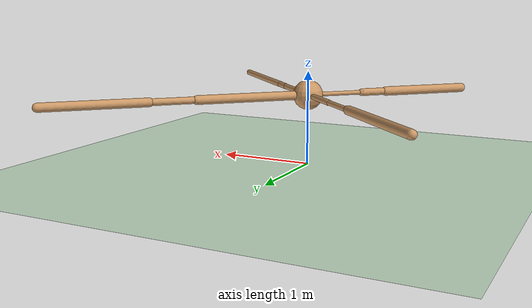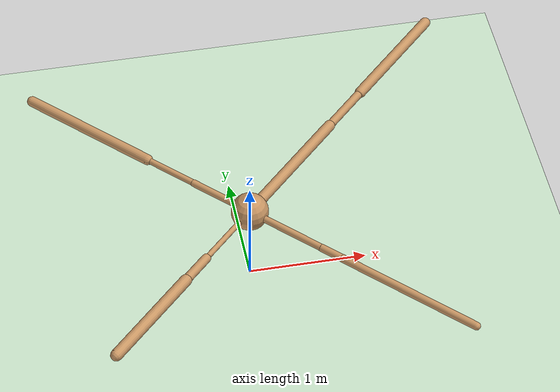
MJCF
<mujoco model="ant">
  <compiler angle="degree" coordinate="local" inertiafromgeom="true" />
  <option integrator="RK4" timestep="0.01" />
  <custom>
    <numeric data="0.0 0.0 0.55 1.0 0.0 0.0 0.0 0.0 1.0 0.0 -1.0 0.0 -1.0 0.0 1.0" name="init_qpos" />
  </custom>
  <default>
    <joint armature="1" damping="1" limited="true" />
    <geom conaffinity="0" condim="3" density="5.0" friction="1 0.5 0.5" margin="0.01" rgba="0.8 0.6 0.4 1" />
  </default>
  <asset>
    <texture builtin="gradient" height="100" rgb1="1 1 1" rgb2="0 0 0" type="skybox" width="100" />
    <texture builtin="flat" height="1278" mark="cross" markrgb="1 1 1" name="texgeom" random="0.01" rgb1="0.8 0.6 0.4" rgb2="0.8 0.6 0.4" type="cube" width="127" />
    <texture builtin="checker" height="100" name="texplane" rgb1="0 0 0" rgb2="0.8 0.8 0.8" type="2d" width="100" />
    <material name="MatPlane" reflectance="0.5" shininess="1" specular="1" texrepeat="60 60" texture="texplane" />
    <material name="geom" texture="texgeom" texuniform="true" />
  </asset>
  <worldbody>
    <light cutoff="100" diffuse="1 1 1" dir="-0 0 -1.3" directional="true" exponent="1" pos="0 0 1.3" specular=".1 .1 .1" />
    <geom conaffinity="1" condim="3" material="MatPlane" name="floor" pos="0 0 0" rgba="0.8 0.9 0.8 1" size="40 40 40" type="plane" />
    <body name="torso" pos="0 0 0.75">
      <camera name="track" mode="trackcom" pos="0 -11 5" xyaxes="1 0 0 0 0.5 1" />
      <geom name="torso_geom" pos="0 0 0" size="0.15727044641971588" type="sphere" />
      <joint armature="0" damping="0" limited="false" margin="0.01" name="root" pos="0 0 0" type="free" />
      <body name="front_left_leg" pos="0 0 0">
        <geom fromto="0 0 0 0.8467984795570374 0.8467984795570374 0" name="aux_1_geom" size="0.047141335904598236" type="capsule" />
        <body name="aux_1" pos="0.8467984795570374 0.8467984795570374 0">
          <joint axis="0 0 1" name="hip_1" pos="0.0 0.0 0.0" range="-30 30" type="hinge" />
          <geom fromto="0 0 0 0.34127774834632874 0.34127774834632874 0" name="left_leg_geom" size="0.036157820373773575" type="capsule" />
          <body name="left_leg_geom_aux" pos="0.34127774834632874 0.34127774834632874 0">
            <joint axis="-1 1 0" name="ankle_1" pos="0.0 0.0 0.0" range="30 70" type="hinge" />
            <geom fromto="0 0 0 0.7525796294212341 0.7525796294212341 0" name="left_ankle_geom" size="0.04646625369787216" type="capsule" />
          </body>
        </body>
      </body>
      <body name="front_right_leg" pos="0 0 0">
        <geom fromto="0 0 0 -0.3974407911300659 0.3974407911300659 0" name="aux_2_geom" size="0.03001130186021328" type="capsule" />
        <body name="aux_2" pos="-0.3974407911300659 0.3974407911300659 0">
          <joint axis="0 0 1" name="hip_2" pos="0.0 0.0 0.0" range="-30 30" type="hinge" />
          <geom fromto="0 0 0 -0.33697956800460815 0.33697956800460815 0" name="right_leg_geom" size="0.02608811855316162" type="capsule" />
          <body name="right_leg_geom_aux" pos="-0.33697956800460815 0.33697956800460815 0">
            <joint axis="1 1 0" name="ankle_2" pos="0.0 0.0 0.0" range="-70 -30" type="hinge" />
            <geom fromto="0 0 0 -0.8615007400512695 0.8615007400512695 0" name="right_ankle_geom" size="0.04501624405384064" type="capsule" />
          </body>
        </body>
      </body>
      <body name="back_leg" pos="0 0 0">
        <geom fromto="0 0 0 -0.4407499134540558 -0.4407499134540558 0" name="aux_3_geom" size="0.022860348224639893" type="capsule" />
        <body name="aux_3" pos="-0.4407499134540558 -0.4407499134540558 0">
          <joint axis="0 0 1" name="hip_3" pos="0.0 0.0 0.0" range="-30 30" type="hinge" />
          <geom fromto="0 0 0 -0.19910243153572083 -0.19910243153572083 0" name="back_leg_geom" size="0.03878891468048096" type="capsule" />
          <body name="back_leg_geom_aux" pos="-0.19910243153572083 -0.19910243153572083 0">
            <joint axis="-1 1 0" name="ankle_3" pos="0.0 0.0 0.0" range="-70 -30" type="hinge" />
            <geom fromto="0 0 0 -0.6606000661849976 -0.6606000661849976 0" name="third_ankle_geom" size="0.04888727888464928" type="capsule" />
          </body>
        </body>
      </body>
      <body name="right_back_leg" pos="0 0 0">
        <geom fromto="0 0 0 0.5018303394317627 -0.5018303394317627 0" name="aux_4_geom" size="0.029924247413873672" type="capsule" />
        <body name="aux_4" pos="0.5018303394317627 -0.5018303394317627 0">
          <joint axis="0 0 1" name="hip_4" pos="0.0 0.0 0.0" range="-30 30" type="hinge" />
          <geom fromto="0 0 0 0.13782772421836853 -0.13782772421836853 0" name="rightback_leg_geom" size="0.03211836516857147" type="capsule" />
          <body name="rightback_leg_geom_aux" pos="0.13782772421836853 -0.13782772421836853 0">
            <joint axis="1 1 0" name="ankle_4" pos="0.0 0.0 0.0" range="30 70" type="hinge" />
            <geom fromto="0 0 0 0.8883224725723267 -0.8883224725723267 0" name="fourth_ankle_geom" size="0.03358841314911842" type="capsule" />
          </body>
        </body>
      </body>
    </body>
  </worldbody>
  <actuator>
    <motor ctrllimited="true" ctrlrange="-1.0 1.0" joint="hip_4" gear="150" />
    <motor ctrllimited="true" ctrlrange="-1.0 1.0" joint="ankle_4" gear="150" />
    <motor ctrllimited="true" ctrlrange="-1.0 1.0" joint="hip_1" gear="150" />
    <motor ctrllimited="true" ctrlrange="-1.0 1.0" joint="ankle_1" gear="150" />
    <motor ctrllimited="true" ctrlrange="-1.0 1.0" joint="hip_2" gear="150" />
    <motor ctrllimited="true" ctrlrange="-1.0 1.0" joint="ankle_2" gear="150" />
    <motor ctrllimited="true" ctrlrange="-1.0 1.0" joint="hip_3" gear="150" />
    <motor ctrllimited="true" ctrlrange="-1.0 1.0" joint="ankle_3" gear="150" />
  </actuator>
</mujoco>
